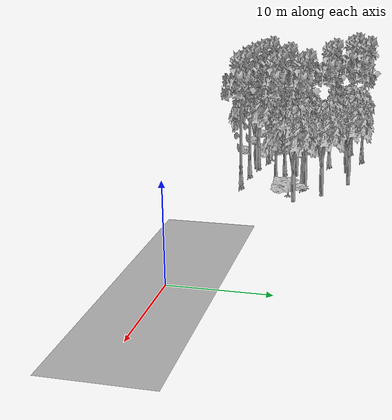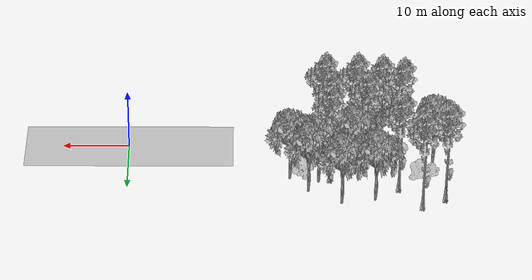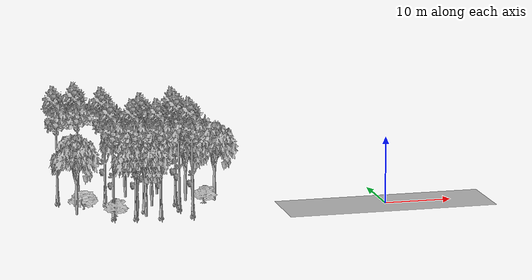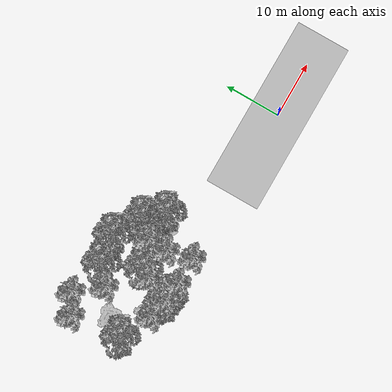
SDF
<sdf version="1.7">
 <world name="default">
  <model name="ground_plane">
   <static>1</static>
   <link name="link">
    <collision name="collision">
     <pose>-50 0 0 0 -0 0</pose>
     <geometry><plane><normal>0 0 1</normal><size>100 100</size></plane></geometry>
     <surface><contact><ode><min_depth>0.01</min_depth><max_vel>0</max_vel></ode></contact></surface>
    </collision>
    <visual name="grass">
     <cast_shadows>0</cast_shadows>
     <geometry>
      <mesh>
       <scale>0.5814285714285714 0.18142857142857144 0.1</scale>
       <uri>file://grass_plane/meshes/grass_plane.dae</uri>
      </mesh>
     </geometry>
    </visual>
   </link>
  </model>
  <model name="Tree 12">
   <static>1</static>
   <pose>-40.38204499397769 2.0866068830576374 0 1.57079 -0 0</pose>
   <link name="link">
    <collision name="collision">
     <geometry><mesh><scale>4 2.5 4</scale><uri>model://tree_1/meshes/tree_1.obj</uri></mesh></geometry>
    </collision>
    <visual name="visual">
     <geometry><mesh><scale>4 2.5 4</scale><uri>model://tree_1/meshes/tree_1.obj</uri></mesh></geometry>
    </visual>
   </link>
  </model>
  <model name="Tree 23">
   <static>1</static>
   <pose>-26.937929977554283 10.79643842564813 0 1.57079 -0 0</pose>
   <link name="link">
    <collision name="collision">
     <geometry><mesh><scale>3.5 5 3.5</scale><uri>model://tree_2/meshes/tree_2.obj</uri></mesh></geometry>
    </collision>
    <visual name="visual">
     <geometry><mesh><scale>3.5 5 3.5</scale><uri>model://tree_2/meshes/tree_2.obj</uri></mesh></geometry>
    </visual>
   </link>
  </model>
  <model name="Tree 33">
   <static>1</static>
   <pose>-40.21989665308057 10.182712378771594 0 1.57079 -0 0</pose>
   <link name="link">
    <collision name="collision">
     <geometry><mesh><scale>3.5 5 3.5</scale><uri>model://tree_9/meshes/tree_9.obj</uri></mesh></geometry>
    </collision>
    <visual name="visual">
     <geometry><mesh><scale>3.5 5 3.5</scale><uri>model://tree_9/meshes/tree_9.obj</uri></mesh></geometry>
    </visual>
   </link>
  </model>
  <model name="Tree 34">
   <static>1</static>
   <pose>-43.97453694378899 7.3168416365565285 0 1.57079 -0 0</pose>
   <link name="link">
    <collision name="collision">
     <geometry><mesh><scale>3 2 3</scale><uri>model://tree_3/meshes/tree_3.obj</uri></mesh></geometry>
    </collision>
    <visual name="visual">
     <geometry><mesh><scale>3 2 3</scale><uri>model://tree_3/meshes/tree_3.obj</uri></mesh></geometry>
    </visual>
   </link>
  </model>
  <model name="Tree 40">
   <static>1</static>
   <pose>-46.96365677897495 12.595768876945606 0 1.57079 -0 0</pose>
   <link name="link">
    <collision name="collision">
     <geometry><mesh><scale>3.5 5 3.5</scale><uri>model://tree_9/meshes/tree_9.obj</uri></mesh></geometry>
    </collision>
    <visual name="visual">
     <geometry><mesh><scale>3.5 5 3.5</scale><uri>model://tree_9/meshes/tree_9.obj</uri></mesh></geometry>
    </visual>
   </link>
  </model>
  <model name="Tree 41">
   <static>1</static>
   <pose>-40.62539945901084 1.4732722447571405 0 1.57079 -0 0</pose>
   <link name="link">
    <collision name="collision">
     <geometry><mesh><scale>3.5 5 3.5</scale><uri>model://tree_9/meshes/tree_9.obj</uri></mesh></geometry>
    </collision>
    <visual name="visual">
     <geometry><mesh><scale>3.5 5 3.5</scale><uri>model://tree_9/meshes/tree_9.obj</uri></mesh></geometry>
    </visual>
   </link>
  </model>
  <model name="Tree 44">
   <static>1</static>
   <pose>-24.261901078053327 7.768917298597536 0 1.57079 -0 0</pose>
   <link name="link">
    <collision name="collision">
     <geometry><mesh><scale>3.5 5 3.5</scale><uri>model://tree_2/meshes/tree_2.obj</uri></mesh></geometry>
    </collision>
    <visual name="visual">
     <geometry><mesh><scale>3.5 5 3.5</scale><uri>model://tree_2/meshes/tree_2.obj</uri></mesh></geometry>
    </visual>
   </link>
  </model>
  <model name="Tree 48">
   <static>1</static>
   <pose>-31.796461355611257 13.614126922410751 0 1.57079 -0 0</pose>
   <link name="link">
    <collision name="collision">
     <geometry><mesh><scale>3.5 5 3.5</scale><uri>model://tree_2/meshes/tree_2.obj</uri></mesh></geometry>
    </collision>
    <visual name="visual">
     <geometry><mesh><scale>3.5 5 3.5</scale><uri>model://tree_2/meshes/tree_2.obj</uri></mesh></geometry>
    </visual>
   </link>
  </model>
  <model name="Tree 50">
   <static>1</static>
   <pose>-36.05950503609103 0.7137605168866816 0 1.57079 -0 0</pose>
   <link name="link">
    <collision name="collision">
     <geometry><mesh><scale>3.5 5 3.5</scale><uri>model://tree_2/meshes/tree_2.obj</uri></mesh></geometry>
    </collision>
    <visual name="visual">
     <geometry><mesh><scale>3.5 5 3.5</scale><uri>model://tree_2/meshes/tree_2.obj</uri></mesh></geometry>
    </visual>
   </link>
  </model>
  <model name="Tree 51">
   <static>1</static>
   <pose>-34.000479828652416 6.6061370824756125 0 1.57079 -0 0</pose>
   <link name="link">
    <collision name="collision">
     <geometry><mesh><scale>3.5 5 3.5</scale><uri>model://tree_2/meshes/tree_2.obj</uri></mesh></geometry>
    </collision>
    <visual name="visual">
     <geometry><mesh><scale>3.5 5 3.5</scale><uri>model://tree_2/meshes/tree_2.obj</uri></mesh></geometry>
    </visual>
   </link>
  </model>
  <model name="Tree 56">
   <static>1</static>
   <pose>-33.8498696414772 0.314848780875586 0 1.57079 -0 0</pose>
   <link name="link">
    <collision name="collision">
     <geometry><mesh><scale>3.5 5 3.5</scale><uri>model://tree_9/meshes/tree_9.obj</uri></mesh></geometry>
    </collision>
    <visual name="visual">
     <geometry><mesh><scale>3.5 5 3.5</scale><uri>model://tree_9/meshes/tree_9.obj</uri></mesh></geometry>
    </visual>
   </link>
  </model>
  <model name="Tree 57">
   <static>1</static>
   <pose>-30.2119916702256 4.531362346877483 0 1.57079 -0 0</pose>
   <link name="link">
    <collision name="collision">
     <geometry><mesh><scale>3.5 5 3.5</scale><uri>model://tree_9/meshes/tree_9.obj</uri></mesh></geometry>
    </collision>
    <visual name="visual">
     <geometry><mesh><scale>3.5 5 3.5</scale><uri>model://tree_9/meshes/tree_9.obj</uri></mesh></geometry>
    </visual>
   </link>
  </model>
  <model name="Tree 59">
   <static>1</static>
   <pose>-37.467140774203166 0.7806839780797343 0 1.57079 -0 0</pose>
   <link name="link">
    <collision name="collision">
     <geometry><mesh><scale>3.5 5 3.5</scale><uri>model://tree_9/meshes/tree_9.obj</uri></mesh></geometry>
    </collision>
    <visual name="visual">
     <geometry><mesh><scale>3.5 5 3.5</scale><uri>model://tree_9/meshes/tree_9.obj</uri></mesh></geometry>
    </visual>
   </link>
  </model>
  <model name="Tree 68">
   <static>1</static>
   <pose>-45.66320251608889 4.144300842189896 0 1.57079 -0 0</pose>
   <link name="link">
    <collision name="collision">
     <geometry><mesh><scale>3.5 5 3.5</scale><uri>model://tree_2/meshes/tree_2.obj</uri></mesh></geometry>
    </collision>
    <visual name="visual">
     <geometry><mesh><scale>3.5 5 3.5</scale><uri>model://tree_2/meshes/tree_2.obj</uri></mesh></geometry>
    </visual>
   </link>
  </model>
  <model name="Tree 94">
   <static>1</static>
   <pose>-30.06889049258153 7.943618966634123 0 1.57079 -0 0</pose>
   <link name="link">
    <collision name="collision">
     <geometry><mesh><scale>3.5 5 3.5</scale><uri>model://tree_9/meshes/tree_9.obj</uri></mesh></geometry>
    </collision>
    <visual name="visual">
     <geometry><mesh><scale>3.5 5 3.5</scale><uri>model://tree_9/meshes/tree_9.obj</uri></mesh></geometry>
    </visual>
   </link>
  </model>
  <model name="Tree 104">
   <static>1</static>
   <pose>-26.073366171540798 6.847289061741293 0 1.57079 -0 0</pose>
   <link name="link">
    <collision name="collision">
     <geometry><mesh><scale>4 2.5 4</scale><uri>model://tree_1/meshes/tree_1.obj</uri></mesh></geometry>
    </collision>
    <visual name="visual">
     <geometry><mesh><scale>4 2.5 4</scale><uri>model://tree_1/meshes/tree_1.obj</uri></mesh></geometry>
    </visual>
   </link>
  </model>
  <model name="Tree 121">
   <static>1</static>
   <pose>-36.7577606299494 12.841372930317124 0 1.57079 -0 0</pose>
   <link name="link">
    <collision name="collision">
     <geometry><mesh><scale>3.5 5 3.5</scale><uri>model://tree_2/meshes/tree_2.obj</uri></mesh></geometry>
    </collision>
    <visual name="visual">
     <geometry><mesh><scale>3.5 5 3.5</scale><uri>model://tree_2/meshes/tree_2.obj</uri></mesh></geometry>
    </visual>
   </link>
  </model>
  <model name="Tree 125">
   <static>1</static>
   <pose>-35.460026855717096 4.773108811396007 0 1.57079 -0 0</pose>
   <link name="link">
    <collision name="collision">
     <geometry><mesh><scale>3.5 5 3.5</scale><uri>model://tree_9/meshes/tree_9.obj</uri></mesh></geometry>
    </collision>
    <visual name="visual">
     <geometry><mesh><scale>3.5 5 3.5</scale><uri>model://tree_9/meshes/tree_9.obj</uri></mesh></geometry>
    </visual>
   </link>
  </model>
  <model name="Tree 135">
   <static>1</static>
   <pose>-29.13663399993367 0.234501327307564 0 1.57079 -0 0</pose>
   <link name="link">
    <collision name="collision">
     <geometry><mesh><scale>3.5 5 3.5</scale><uri>model://tree_9/meshes/tree_9.obj</uri></mesh></geometry>
    </collision>
    <visual name="visual">
     <geometry><mesh><scale>3.5 5 3.5</scale><uri>model://tree_9/meshes/tree_9.obj</uri></mesh></geometry>
    </visual>
   </link>
  </model>
  <model name="Tree 151">
   <static>1</static>
   <pose>-28.500499446153675 8.552146765243627 0 1.57079 -0 0</pose>
   <link name="link">
    <collision name="collision">
     <geometry><mesh><scale>3.5 5 3.5</scale><uri>model://tree_2/meshes/tree_2.obj</uri></mesh></geometry>
    </collision>
    <visual name="visual">
     <geometry><mesh><scale>3.5 5 3.5</scale><uri>model://tree_2/meshes/tree_2.obj</uri></mesh></geometry>
    </visual>
   </link>
  </model>
  <model name="Tree 163">
   <static>1</static>
   <pose>-37.3489107356674 0.8031897410105842 0 1.57079 -0 0</pose>
   <link name="link">
    <collision name="collision">
     <geometry><mesh><scale>3.5 5 3.5</scale><uri>model://tree_2/meshes/tree_2.obj</uri></mesh></geometry>
    </collision>
    <visual name="visual">
     <geometry><mesh><scale>3.5 5 3.5</scale><uri>model://tree_2/meshes/tree_2.obj</uri></mesh></geometry>
    </visual>
   </link>
  </model>
  <model name="Tree 173">
   <static>1</static>
   <pose>-43.510847063476774 14.447761478109168 0 1.57079 -0 0</pose>
   <link name="link">
    <collision name="collision">
     <geometry><mesh><scale>3.5 5 3.5</scale><uri>model://tree_9/meshes/tree_9.obj</uri></mesh></geometry>
    </collision>
    <visual name="visual">
     <geometry><mesh><scale>3.5 5 3.5</scale><uri>model://tree_9/meshes/tree_9.obj</uri></mesh></geometry>
    </visual>
   </link>
  </model>
 </world>
</sdf>
